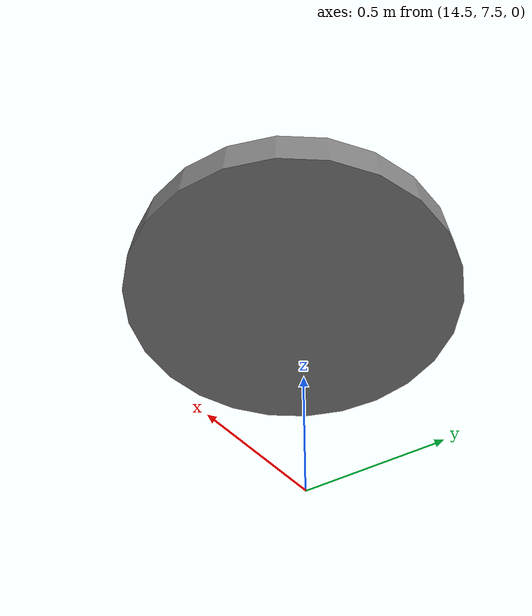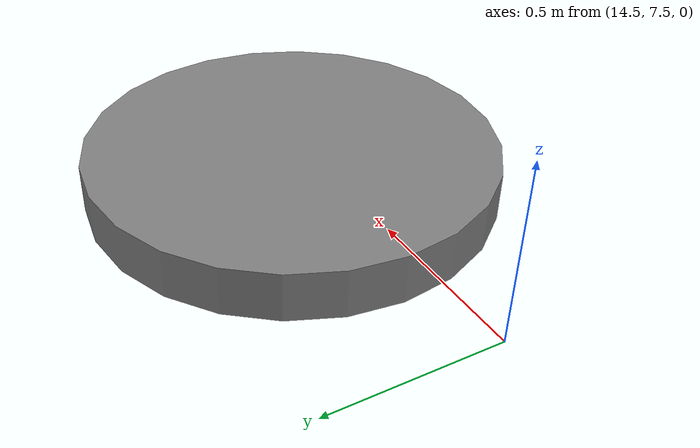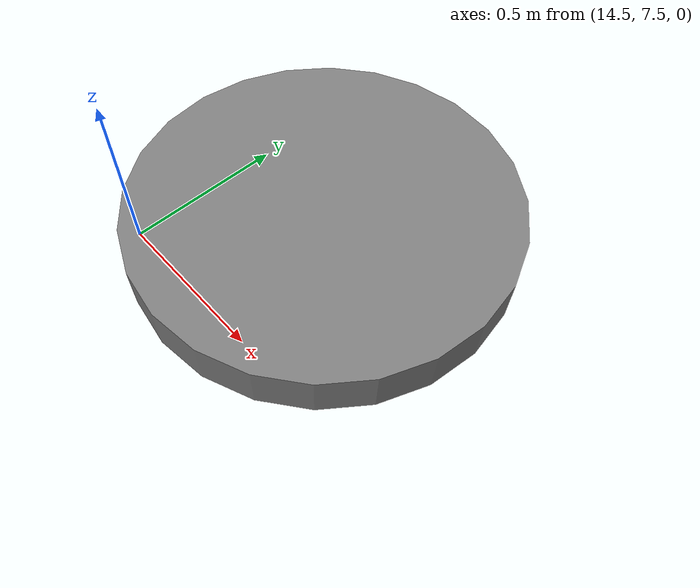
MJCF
<mujoco model="go2 scene">

  <statistic center="0 0 0.1" extent="0.8" />

  <visual>
    <headlight diffuse="0.6 0.6 0.6" ambient="0.3 0.3 0.3" specular="0 0 0" />
    <rgba haze="0.15 0.25 0.35 1" />
    <global azimuth="-130" elevation="-20" />
  </visual>

  <asset>
    <texture type="skybox" builtin="gradient" rgb1="0.3 0.5 0.7" rgb2="0 0 0" width="512" height="3072" />

  </asset>

  <worldbody>

  <geom pos="15 7.8 0.305" type="cylinder" size="0.5 0.06 0.25" quat="1.0 0.0 0.0 0.0" /></worldbody>

</mujoco>
